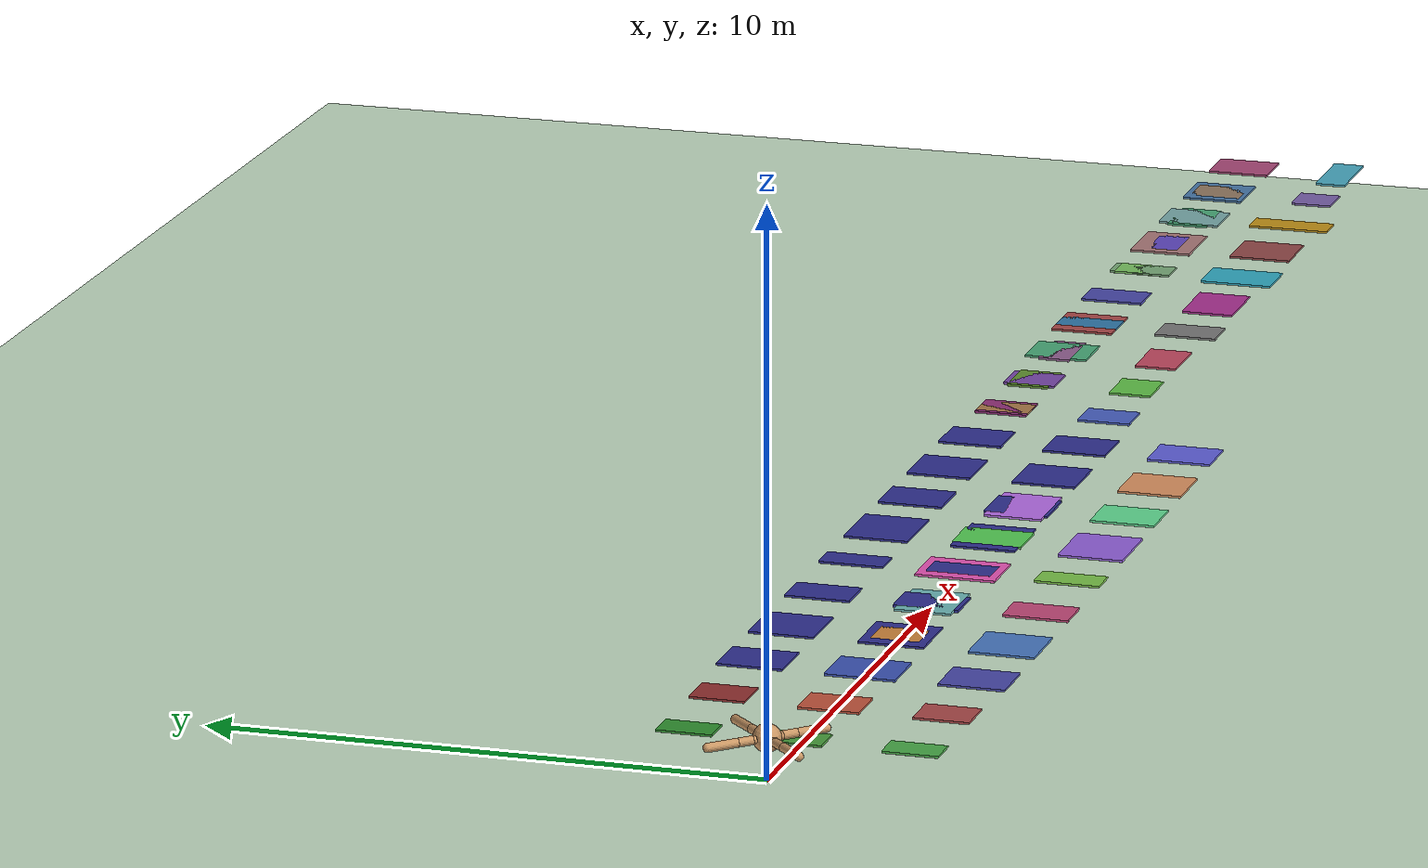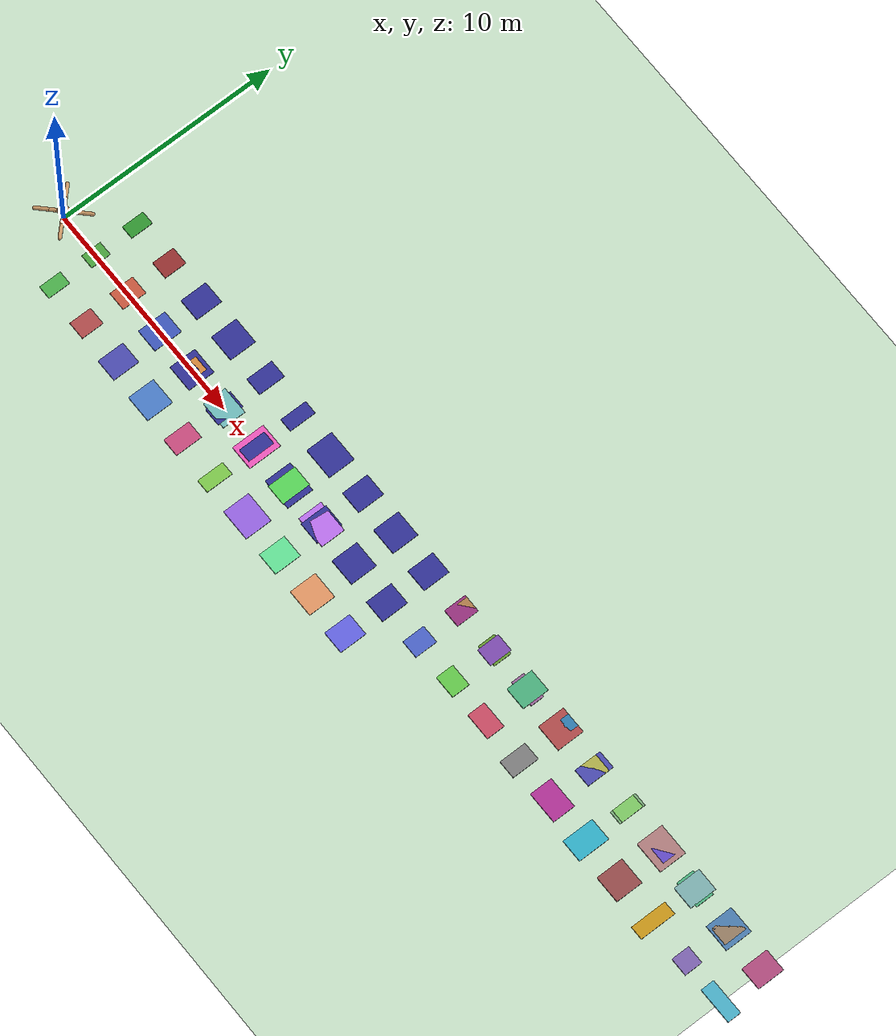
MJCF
<mujoco model="ant">
  <compiler angle="degree" coordinate="local" inertiafromgeom="true"/>
  <option integrator="RK4" timestep="0.01"/>
  <custom>
    <numeric data="0.0 0.0 0.55 1.0 0.0 0.0 0.0 0.0 1.0 0.0 -1.0 0.0 -1.0 0.0 1.0" name="init_qpos"/>
  </custom>
  <default>
    <joint armature="1" damping="1" limited="true"/>
    <geom conaffinity="0" condim="3" density="5.0" friction="1 0.5 0.5" margin="0.01" rgba="0.8 0.6 0.4 1"/>
  </default>
  <asset>
    <texture builtin="gradient" height="100" rgb1="1 1 1" rgb2="0 0 0" type="skybox" width="100"/>
    <texture builtin="flat" height="1278" mark="cross" markrgb="1 1 1" name="texgeom" random="0.01" rgb1="0.8 0.6 0.4" rgb2="0.8 0.6 0.4" type="cube" width="127"/>
    <texture builtin="checker" height="100" name="texplane" rgb1="0 0 0" rgb2="0.8 0.8 0.8" type="2d" width="100"/>
    <material name="MatPlane" reflectance="0.5" shininess="1" specular="1" texrepeat="60 60" texture="texplane"/>
    <material name="geom" texture="texgeom" texuniform="true"/>
  </asset>
  <worldbody>
    <light cutoff="100" diffuse="1 1 1" dir="-0 0 -1.3" directional="true" exponent="1" pos="0 0 1.3" specular=".1 .1 .1"/>
    <geom conaffinity="1" condim="3" material="MatPlane" name="floor" pos="0 0 0" rgba="0.8 0.9 0.8 1" size="40 40 40" type="plane"/>

    <!-- OBSTÁCULOS EN X -->
    <geom name="obstacle1" type="box" pos="2.0 0 0.1" size="0.32 0.45 0.02" rgba="0.3 0.65 0.25 1" contype="1" conaffinity="1" friction="1 0.5 0.5"/>
    <geom name="obstacle2" type="box" pos="4.0 0 0.1" size="0.42 0.55 0.02" rgba="0.8 0.35 0.25 1" contype="1" conaffinity="1" friction="1 0.5 0.5"/>
    <geom name="obstacle3" type="box" pos="6.0 0 0.1" size="0.52 0.64 0.02" rgba="0.25 0.35 0.75 1" contype="1" conaffinity="1" friction="1 0.5 0.5"/>
    <geom name="obstacle4" type="box" pos="8.0 0 0.1" size="0.34 0.44 0.02" rgba="0.85 0.55 0.25 1" contype="1" conaffinity="1" friction="1 0.5 0.5"/>
    <geom name="obstacle5" type="box" pos="10.0 0 0.1" size="0.62 0.52 0.02" rgba="0.45 0.75 0.75 1" contype="1" conaffinity="1" friction="1 0.5 0.5"/>
    <geom name="obstacle6" type="box" pos="12.0 0 0.1" size="0.54 0.74 0.02" rgba="0.95 0.35 0.75 1" contype="1" conaffinity="1" friction="1 0.5 0.5"/>
    <geom name="obstacle7" type="box" pos="14.0 0 0.1" size="0.46 0.64 0.02" rgba="0.35 0.85 0.35 1" contype="1" conaffinity="1" friction="1 0.5 0.5"/>
    <geom name="obstacle8" type="box" pos="16.0 0 0.1" size="0.72 0.54 0.02" rgba="0.75 0.45 0.95 1" contype="1" conaffinity="1" friction="1 0.5 0.5"/>
    <geom name="obstacle9" type="box" pos="8.0 0 0.1" size="0.6 0.6 0.02" rgba="0.2 0.2 0.6 1" contype="1" conaffinity="1" friction="1 0.5 0.5"/>
    <geom name="obstacle10" type="box" pos="10.0 0 0.1" size="0.4 0.6 0.02" rgba="0.2 0.2 0.6 1" contype="1" conaffinity="1" friction="1 0.5 0.5"/>
    <geom name="obstacle11" type="box" pos="12.0 0 0.1" size="0.3 0.6 0.02" rgba="0.2 0.2 0.6 1" contype="1" conaffinity="1" friction="1 0.5 0.5"/>
    <geom name="obstacle12" type="box" pos="14.0 0 0.1" size="0.7 0.6 0.02" rgba="0.2 0.2 0.6 1" contype="1" conaffinity="1" friction="1 0.5 0.5"/>
    <geom name="obstacle13" type="box" pos="16.0 0 0.1" size="0.5 0.6 0.02" rgba="0.2 0.2 0.6 1" contype="1" conaffinity="1" friction="1 0.5 0.5"/>
    <geom name="obstacle14" type="box" pos="18.0 0 0.1" size="0.6 0.6 0.02" rgba="0.2 0.2 0.6 1" contype="1" conaffinity="1" friction="1 0.5 0.5"/>
    <geom name="obstacle15" type="box" pos="20.0 0 0.1" size="0.5 0.6 0.02" rgba="0.2 0.2 0.6 1" contype="1" conaffinity="1" friction="1 0.5 0.5"/>
    <geom name="obstacle16" type="box" pos="22.0 0 0.1" size="0.4 0.5 0.02" rgba="0.3 0.4 0.8 1" contype="1" conaffinity="1" friction="1 0.5 0.5"/>
    <geom name="obstacle17" type="box" pos="24.0 0 0.1" size="0.5 0.4 0.02" rgba="0.4 0.8 0.3 1" contype="1" conaffinity="1" friction="1 0.5 0.5"/>
    <geom name="obstacle18" type="box" pos="26.0 0 0.1" size="0.6 0.4 0.02" rgba="0.8 0.3 0.4 1" contype="1" conaffinity="1" friction="1 0.5 0.5"/>
    <geom name="obstacle19" type="box" pos="28.0 0 0.1" size="0.4 0.6 0.02" rgba="0.5 0.5 0.5 1" contype="1" conaffinity="1" friction="1 0.5 0.5"/>
    <geom name="obstacle20" type="box" pos="30.0 0 0.1" size="0.7 0.5 0.02" rgba="0.7 0.2 0.6 1" contype="1" conaffinity="1" friction="1 0.5 0.5"/>
    <geom name="obstacle21" type="box" pos="32.0 0 0.1" size="0.5 0.7 0.02" rgba="0.2 0.7 0.8 1" contype="1" conaffinity="1" friction="1 0.5 0.5"/>
    <geom name="obstacle22" type="box" pos="34.0 0 0.1" size="0.6 0.6 0.02" rgba="0.6 0.3 0.3 1" contype="1" conaffinity="1" friction="1 0.5 0.5"/>
    <geom name="obstacle23" type="box" pos="36.0 0 0.1" size="0.3 0.8 0.02" rgba="0.8 0.6 0.1 1" contype="1" conaffinity="1" friction="1 0.5 0.5"/>
    <geom name="obstacle24" type="box" pos="38.0 0 0.1" size="0.4 0.4 0.02" rgba="0.5 0.4 0.7 1" contype="1" conaffinity="1" friction="1 0.5 0.5"/>
    <geom name="obstacle25" type="box" pos="40.0 0 0.1" size="0.8 0.3 0.02" rgba="0.3 0.7 0.8 1" contype="1" conaffinity="1" friction="1 0.5 0.5"/>

    <!-- OBSTÁCULOS EN +Y -->
    <geom name="obstacle26" type="box" pos="2.0 2 0.1" size="0.3 0.5 0.02" rgba="0.2 0.6 0.2 1" contype="1" conaffinity="1" friction="1 0.5 0.5"/>
    <geom name="obstacle27" type="box" pos="4.0 2 0.1" size="0.4 0.5 0.02" rgba="0.6 0.2 0.2 1" contype="1" conaffinity="1" friction="1 0.5 0.5"/>
    <geom name="obstacle28" type="box" pos="6.0 2 0.1" size="0.5 0.6 0.02" rgba="0.2 0.2 0.6 1" contype="1" conaffinity="1" friction="1 0.5 0.5"/>
    <geom name="obstacle29" type="box" pos="8.0 2 0.1" size="0.6 0.6 0.02" rgba="0.2 0.2 0.6 1" contype="1" conaffinity="1" friction="1 0.5 0.5"/>
    <geom name="obstacle30" type="box" pos="10.0 2 0.1" size="0.4 0.6 0.02" rgba="0.2 0.2 0.6 1" contype="1" conaffinity="1" friction="1 0.5 0.5"/>
    <geom name="obstacle31" type="box" pos="12.0 2 0.1" size="0.3 0.6 0.02" rgba="0.2 0.2 0.6 1" contype="1" conaffinity="1" friction="1 0.5 0.5"/>
    <geom name="obstacle32" type="box" pos="14.0 2 0.1" size="0.7 0.6 0.02" rgba="0.2 0.2 0.6 1" contype="1" conaffinity="1" friction="1 0.5 0.5"/>
    <geom name="obstacle33" type="box" pos="16.0 2 0.1" size="0.5 0.6 0.02" rgba="0.2 0.2 0.6 1" contype="1" conaffinity="1" friction="1 0.5 0.5"/>
    <geom name="obstacle34" type="box" pos="18.0 2 0.1" size="0.6 0.6 0.02" rgba="0.2 0.2 0.6 1" contype="1" conaffinity="1" friction="1 0.5 0.5"/>
    <geom name="obstacle35" type="box" pos="20.0 2 0.1" size="0.5 0.6 0.02" rgba="0.2 0.2 0.6 1" contype="1" conaffinity="1" friction="1 0.5 0.5"/>
    <geom name="obstacle36" type="box" pos="22.0 2 0.1" size="0.3 0.5 0.02" rgba="0.7 0.5 0.3 1" contype="1" conaffinity="1" friction="1 0.5 0.5"/>
    <geom name="obstacle37" type="box" pos="24.0 2 0.1" size="0.4 0.5 0.02" rgba="0.5 0.3 0.7 1" contype="1" conaffinity="1" friction="1 0.5 0.5"/>
    <geom name="obstacle38" type="box" pos="26.0 2 0.1" size="0.5 0.6 0.02" rgba="0.3 0.7 0.5 1" contype="1" conaffinity="1" friction="1 0.5 0.5"/>
    <geom name="obstacle39" type="box" pos="28.0 2 0.1" size="0.6 0.6 0.02" rgba="0.7 0.3 0.3 1" contype="1" conaffinity="1" friction="1 0.5 0.5"/>
    <geom name="obstacle40" type="box" pos="30.0 2 0.1" size="0.4 0.6 0.02" rgba="0.3 0.3 0.7 1" contype="1" conaffinity="1" friction="1 0.5 0.5"/>
    <geom name="obstacle41" type="box" pos="32.0 2 0.1" size="0.3 0.6 0.02" rgba="0.5 0.7 0.5 1" contype="1" conaffinity="1" friction="1 0.5 0.5"/>
    <geom name="obstacle42" type="box" pos="34.0 2 0.1" size="0.7 0.6 0.02" rgba="0.7 0.5 0.5 1" contype="1" conaffinity="1" friction="1 0.5 0.5"/>
    <geom name="obstacle43" type="box" pos="36.0 2 0.1" size="0.5 0.6 0.02" rgba="0.5 0.7 0.7 1" contype="1" conaffinity="1" friction="1 0.5 0.5"/>
    <geom name="obstacle44" type="box" pos="38.0 2 0.1" size="0.6 0.6 0.02" rgba="0.3 0.5 0.7 1" contype="1" conaffinity="1" friction="1 0.5 0.5"/>
    <geom name="obstacle45" type="box" pos="40.0 2 0.1" size="0.5 0.6 0.02" rgba="0.7 0.3 0.5 1" contype="1" conaffinity="1" friction="1 0.5 0.5"/>

     <!-- OBSTÁCULOS EN -Y -->

    <geom name="obstacle46" type="box" pos="2.0 -2 0.1" size="0.3 0.5 0.02" rgba="0.3 0.7 0.3 1" contype="1" conaffinity="1" friction="1 0.5 0.5"/>
    <geom name="obstacle47" type="box" pos="4.0 -2 0.1" size="0.4 0.5 0.02" rgba="0.7 0.3 0.3 1" contype="1" conaffinity="1" friction="1 0.5 0.5"/>
    <geom name="obstacle48" type="box" pos="6.0 -2 0.1" size="0.5 0.6 0.02" rgba="0.3 0.3 0.7 1" contype="1" conaffinity="1" friction="1 0.5 0.5"/>
    <geom name="obstacle49" type="box" pos="8.0 -2 0.1" size="0.6 0.6 0.02" rgba="0.3 0.5 0.8 1" contype="1" conaffinity="1" friction="1 0.5 0.5"/>
    <geom name="obstacle50" type="box" pos="10.0 -2 0.1" size="0.4 0.6 0.02" rgba="0.8 0.3 0.5 1" contype="1" conaffinity="1" friction="1 0.5 0.5"/>
    <geom name="obstacle51" type="box" pos="12.0 -2 0.1" size="0.3 0.6 0.02" rgba="0.5 0.8 0.3 1" contype="1" conaffinity="1" friction="1 0.5 0.5"/>
    <geom name="obstacle52" type="box" pos="14.0 -2 0.1" size="0.7 0.6 0.02" rgba="0.6 0.4 0.9 1" contype="1" conaffinity="1" friction="1 0.5 0.5"/>
    <geom name="obstacle53" type="box" pos="16.0 -2 0.1" size="0.5 0.6 0.02" rgba="0.4 0.9 0.6 1" contype="1" conaffinity="1" friction="1 0.5 0.5"/>
    <geom name="obstacle54" type="box" pos="18.0 -2 0.1" size="0.6 0.6 0.02" rgba="0.9 0.6 0.4 1" contype="1" conaffinity="1" friction="1 0.5 0.5"/>
    <geom name="obstacle55" type="box" pos="20.0 -2 0.1" size="0.5 0.6 0.02" rgba="0.4 0.4 0.9 1" contype="1" conaffinity="1" friction="1 0.5 0.5"/>
    <geom name="obstacle56" type="box" pos="22.0 2 0.1" size="0.4 0.5 0.02" rgba="0.6 0.2 0.5 1" contype="1" conaffinity="1" friction="1 0.5 0.5"/>
    <geom name="obstacle57" type="box" pos="24.0 2 0.1" size="0.5 0.4 0.02" rgba="0.4 0.6 0.2 1" contype="1" conaffinity="1" friction="1 0.5 0.5"/>
    <geom name="obstacle58" type="box" pos="26.0 2 0.1" size="0.6 0.3 0.02" rgba="0.6 0.4 0.6 1" contype="1" conaffinity="1" friction="1 0.5 0.5"/>
    <geom name="obstacle59" type="box" pos="28.0 2 0.1" size="0.3 0.6 0.02" rgba="0.2 0.5 0.7 1" contype="1" conaffinity="1" friction="1 0.5 0.5"/>
    <geom name="obstacle60" type="box" pos="30.0 2 0.1" size="0.4 0.4 0.02" rgba="0.7 0.7 0.3 1" contype="1" conaffinity="1" friction="1 0.5 0.5"/>
    <geom name="obstacle61" type="box" pos="32.0 2 0.1" size="0.3 0.5 0.02" rgba="0.5 0.8 0.4 1" contype="1" conaffinity="1" friction="1 0.5 0.5"/>
    <geom name="obstacle62" type="box" pos="34.0 2 0.1" size="0.5 0.3 0.02" rgba="0.4 0.3 0.8 1" contype="1" conaffinity="1" friction="1 0.5 0.5"/>
    <geom name="obstacle63" type="box" pos="36.0 2 0.1" size="0.6 0.4 0.02" rgba="0.3 0.7 0.5 1" contype="1" conaffinity="1" friction="1 0.5 0.5"/>
    <geom name="obstacle64" type="box" pos="38.0 2 0.1" size="0.4 0.5 0.02" rgba="0.6 0.5 0.4 1" contype="1" conaffinity="1" friction="1 0.5 0.5"/>
    <geom name="obstacle65" type="box" pos="40.0 2 0.1" size="0.5 0.6 0.02" rgba="0.2 0.4 0.6 1" contype="1" conaffinity="1" friction="1 0.5 0.5"/>

    <body name="torso" pos="0 0 0.75">
      <camera name="track" mode="trackcom" pos="0 -3 0.3" xyaxes="1 0 0 0 0 1"/>
      <geom name="torso_geom" pos="0 0 0" size="0.25" type="sphere"/>
      <joint armature="0" damping="0" limited="false" margin="0.01" name="root" pos="0 0 0" type="free"/>
      <body name="front_left_leg" pos="0 0 0">
        <geom fromto="0.0 0.0 0.0 0.2 0.2 0.0" name="aux_1_geom" size="0.08" type="capsule"/>
        <body name="aux_1" pos="0.2 0.2 0">
          <joint axis="0 0 1" name="hip_1" pos="0.0 0.0 0.0" range="-30 30" type="hinge"/>
          <geom fromto="0.0 0.0 0.0 0.2 0.2 0.0" name="left_leg_geom" size="0.08" type="capsule"/>
          <body pos="0.2 0.2 0">
            <joint axis="-1 1 0" name="ankle_1" pos="0.0 0.0 0.0" range="30 70" type="hinge"/>
            <geom fromto="0.0 0.0 0.0 0.4 0.4 0.0" name="left_ankle_geom" size="0.08" type="capsule"/>
          </body>
        </body>
      </body>
      <body name="front_right_leg" pos="0 0 0">
        <geom fromto="0.0 0.0 0.0 -0.2 0.2 0.0" name="aux_2_geom" size="0.08" type="capsule"/>
        <body name="aux_2" pos="-0.2 0.2 0">
          <joint axis="0 0 1" name="hip_2" pos="0.0 0.0 0.0" range="-30 30" type="hinge"/>
          <geom fromto="0.0 0.0 0.0 -0.2 0.2 0.0" name="right_leg_geom" size="0.08" type="capsule"/>
          <body pos="-0.2 0.2 0">
            <joint axis="1 1 0" name="ankle_2" pos="0.0 0.0 0.0" range="-70 -30" type="hinge"/>
            <geom fromto="0.0 0.0 0.0 -0.4 0.4 0.0" name="right_ankle_geom" size="0.08" type="capsule"/>
          </body>
        </body>
      </body>
      <body name="back_leg" pos="0 0 0">
        <geom fromto="0.0 0.0 0.0 -0.2 -0.2 0.0" name="aux_3_geom" size="0.08" type="capsule"/>
        <body name="aux_3" pos="-0.2 -0.2 0">
          <joint axis="0 0 1" name="hip_3" pos="0.0 0.0 0.0" range="-30 30" type="hinge"/>
          <geom fromto="0.0 0.0 0.0 -0.2 -0.2 0.0" name="back_leg_geom" size="0.08" type="capsule"/>
          <body pos="-0.2 -0.2 0">
            <joint axis="-1 1 0" name="ankle_3" pos="0.0 0.0 0.0" range="-70 -30" type="hinge"/>
            <geom fromto="0.0 0.0 0.0 -0.4 -0.4 0.0" name="third_ankle_geom" size="0.08" type="capsule"/>
          </body>
        </body>
      </body>
      <body name="right_back_leg" pos="0 0 0">
        <geom fromto="0.0 0.0 0.0 0.2 -0.2 0.0" name="aux_4_geom" size="0.08" type="capsule"/>
        <body name="aux_4" pos="0.2 -0.2 0">
          <joint axis="0 0 1" name="hip_4" pos="0.0 0.0 0.0" range="-30 30" type="hinge"/>
          <geom fromto="0.0 0.0 0.0 0.2 -0.2 0.0" name="rightback_leg_geom" size="0.08" type="capsule"/>
          <body pos="0.2 -0.2 0">
            <joint axis="1 1 0" name="ankle_4" pos="0.0 0.0 0.0" range="30 70" type="hinge"/>
            <geom fromto="0.0 0.0 0.0 0.4 -0.4 0.0" name="fourth_ankle_geom" size="0.08" type="capsule"/>
          </body>
        </body>
      </body>
    </body>
  </worldbody>
  <actuator>
    <motor ctrllimited="true" ctrlrange="-1.0 1.0" joint="hip_4" gear="150"/>
    <motor ctrllimited="true" ctrlrange="-1.0 1.0" joint="ankle_4" gear="150"/>
    <motor ctrllimited="true" ctrlrange="-1.0 1.0" joint="hip_1" gear="150"/>
    <motor ctrllimited="true" ctrlrange="-1.0 1.0" joint="ankle_1" gear="150"/>
    <motor ctrllimited="true" ctrlrange="-1.0 1.0" joint="hip_2" gear="150"/>
    <motor ctrllimited="true" ctrlrange="-1.0 1.0" joint="ankle_2" gear="150"/>
    <motor ctrllimited="true" ctrlrange="-1.0 1.0" joint="hip_3" gear="150"/>
    <motor ctrllimited="true" ctrlrange="-1.0 1.0" joint="ankle_3" gear="150"/>
  </actuator>
</mujoco>
